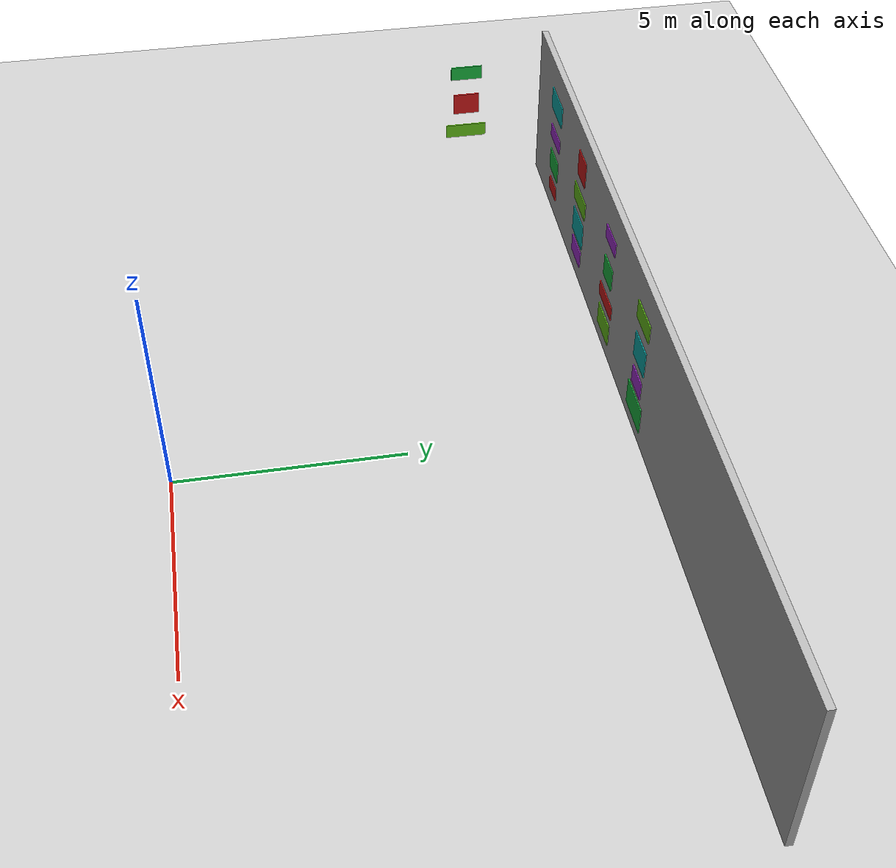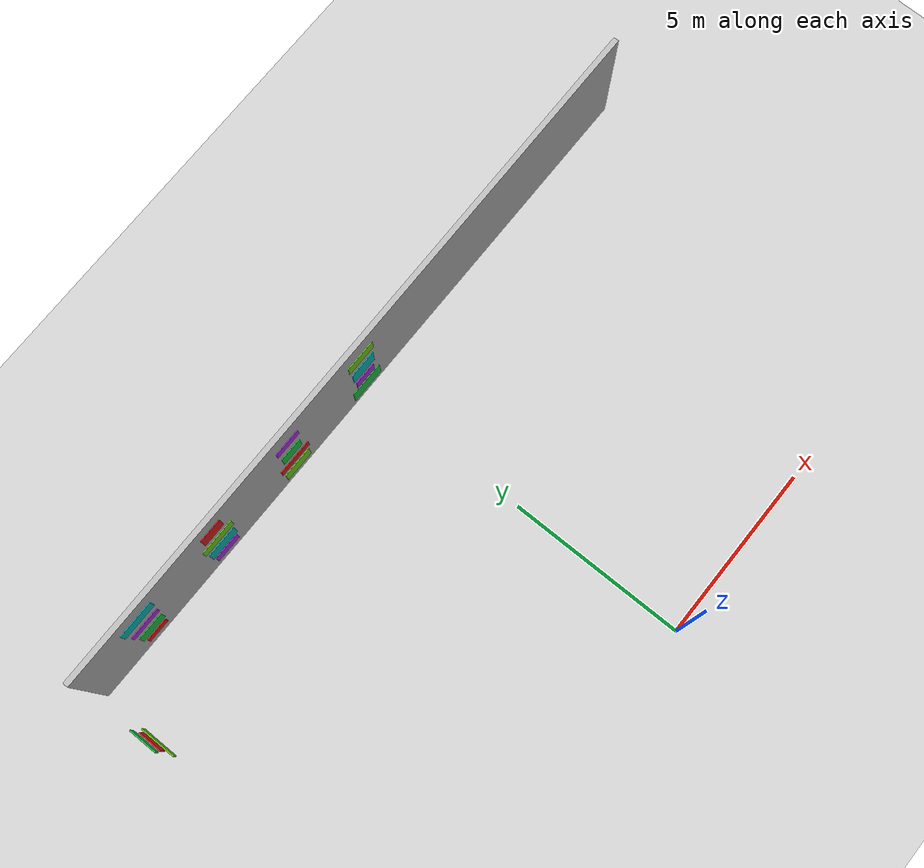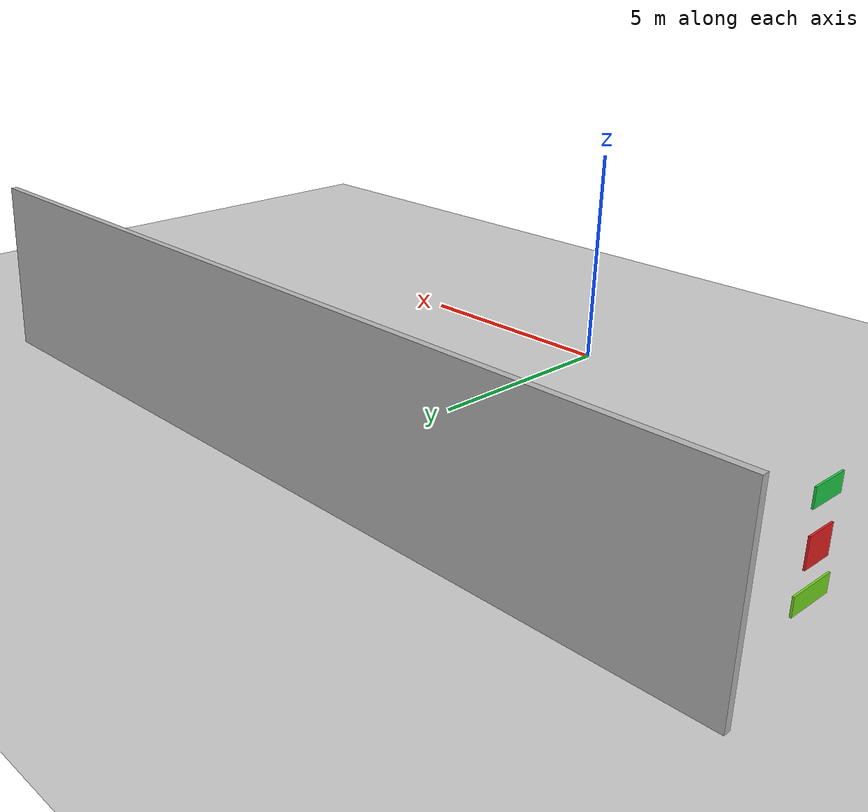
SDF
<sdf version="1.9">
 <world name="vio_marker_arena">
  <model name="ground_plane">
   <static>true</static>
   <link name="link">
    <collision name="collision">
     <geometry><plane><normal>0 0 1</normal><size>1 1</size></plane></geometry>
    </collision>
    <visual name="visual">
     <geometry><plane><normal>0 0 1</normal><size>500 500</size></plane></geometry>
     <material>
      <ambient>0.8 0.8 0.8 1</ambient>
      <diffuse>0.8 0.8 0.8 1</diffuse>
      <specular>0.8 0.8 0.8 1</specular>
     </material>
    </visual>
    <inertial>
     <mass>1</mass>
     <inertia><ixx>1</ixx><ixy>0</ixy><ixz>0</ixz><iyy>1</iyy><iyz>0</iyz><izz>1</izz></inertia>
    </inertial>
   </link>
  </model>
  <model name="vio_wall_north">
   <static>true</static>
   <pose>0.0000 10.0000 2.0000 0.0000 0.0000 0.0000</pose>
   <link name="link">
    <collision name="collision"><geometry><box><size>20.0000 0.1500 4.0000</size></box></geometry></collision>
    <visual name="visual">
     <geometry><box><size>20.0000 0.1500 4.0000</size></box></geometry>
     <material>
      <ambient>0.720 0.720 0.720 1.000</ambient>
      <diffuse>0.720 0.720 0.720 1.000</diffuse>
      <specular>0.10 0.10 0.10 1</specular>
      <emissive>0 0 0 1</emissive>
     </material>
    </visual>
   </link>
  </model>
  <model name="vio_panel_north_0_0">
   <static>true</static>
   <pose>-8.0000 9.9190 0.6500 0.0000 0.0000 0.0000</pose>
   <link name="link">
    <visual name="visual">
     <geometry><box><size>0.6500 0.0350 0.3500</size></box></geometry>
     <material>
      <ambient>0.900 0.120 0.120 1.000</ambient>
      <diffuse>0.900 0.120 0.120 1.000</diffuse>
      <specular>0.10 0.10 0.10 1</specular>
      <emissive>0 0 0 1</emissive>
     </material>
    </visual>
   </link>
  </model>
  <model name="vio_panel_north_0_1">
   <static>true</static>
   <pose>-5.4000 9.9190 0.6500 0.0000 0.0000 0.0000</pose>
   <link name="link">
    <visual name="visual">
     <geometry><box><size>0.7700 0.0350 0.4500</size></box></geometry>
     <material>
      <ambient>0.700 0.200 0.900 1.000</ambient>
      <diffuse>0.700 0.200 0.900 1.000</diffuse>
      <specular>0.10 0.10 0.10 1</specular>
      <emissive>0 0 0 1</emissive>
     </material>
    </visual>
   </link>
  </model>
  <model name="vio_panel_north_0_2">
   <static>true</static>
   <pose>-2.7000 9.9190 0.6500 0.0000 0.0000 0.0000</pose>
   <link name="link">
    <visual name="visual">
     <geometry><box><size>0.8900 0.0350 0.5500</size></box></geometry>
     <material>
      <ambient>0.450 0.850 0.120 1.000</ambient>
      <diffuse>0.450 0.850 0.120 1.000</diffuse>
      <specular>0.10 0.10 0.10 1</specular>
      <emissive>0 0 0 1</emissive>
     </material>
    </visual>
   </link>
  </model>
  <model name="vio_panel_north_0_3">
   <static>true</static>
   <pose>0.0000 9.9190 0.6500 0.0000 0.0000 0.0000</pose>
   <link name="link">
    <visual name="visual">
     <geometry><box><size>1.0100 0.0350 0.6500</size></box></geometry>
     <material>
      <ambient>0.120 0.800 0.280 1.000</ambient>
      <diffuse>0.120 0.800 0.280 1.000</diffuse>
      <specular>0.10 0.10 0.10 1</specular>
      <emissive>0 0 0 1</emissive>
     </material>
    </visual>
   </link>
  </model>
  <model name="vio_panel_north_1_0">
   <static>true</static>
   <pose>-8.0000 9.9190 1.3500 0.0000 0.0000 0.0000</pose>
   <link name="link">
    <visual name="visual">
     <geometry><box><size>0.7700 0.0350 0.5500</size></box></geometry>
     <material>
      <ambient>0.120 0.800 0.280 1.000</ambient>
      <diffuse>0.120 0.800 0.280 1.000</diffuse>
      <specular>0.10 0.10 0.10 1</specular>
      <emissive>0 0 0 1</emissive>
     </material>
    </visual>
   </link>
  </model>
  <model name="vio_panel_north_1_1">
   <static>true</static>
   <pose>-5.4000 9.9190 1.3500 0.0000 0.0000 0.0000</pose>
   <link name="link">
    <visual name="visual">
     <geometry><box><size>0.8900 0.0350 0.6500</size></box></geometry>
     <material>
      <ambient>0.050 0.750 0.750 1.000</ambient>
      <diffuse>0.050 0.750 0.750 1.000</diffuse>
      <specular>0.10 0.10 0.10 1</specular>
      <emissive>0 0 0 1</emissive>
     </material>
    </visual>
   </link>
  </model>
  <model name="vio_panel_north_1_2">
   <static>true</static>
   <pose>-2.7000 9.9190 1.3500 0.0000 0.0000 0.0000</pose>
   <link name="link">
    <visual name="visual">
     <geometry><box><size>1.0100 0.0350 0.3500</size></box></geometry>
     <material>
      <ambient>0.900 0.120 0.120 1.000</ambient>
      <diffuse>0.900 0.120 0.120 1.000</diffuse>
      <specular>0.10 0.10 0.10 1</specular>
      <emissive>0 0 0 1</emissive>
     </material>
    </visual>
   </link>
  </model>
  <model name="vio_panel_north_1_3">
   <static>true</static>
   <pose>0.0000 9.9190 1.3500 0.0000 0.0000 0.0000</pose>
   <link name="link">
    <visual name="visual">
     <geometry><box><size>0.6500 0.0350 0.4500</size></box></geometry>
     <material>
      <ambient>0.700 0.200 0.900 1.000</ambient>
      <diffuse>0.700 0.200 0.900 1.000</diffuse>
      <specular>0.10 0.10 0.10 1</specular>
      <emissive>0 0 0 1</emissive>
     </material>
    </visual>
   </link>
  </model>
  <model name="vio_panel_north_2_0">
   <static>true</static>
   <pose>-8.0000 9.9190 2.1500 0.0000 0.0000 0.0000</pose>
   <link name="link">
    <visual name="visual">
     <geometry><box><size>0.8900 0.0350 0.3500</size></box></geometry>
     <material>
      <ambient>0.700 0.200 0.900 1.000</ambient>
      <diffuse>0.700 0.200 0.900 1.000</diffuse>
      <specular>0.10 0.10 0.10 1</specular>
      <emissive>0 0 0 1</emissive>
     </material>
    </visual>
   </link>
  </model>
  <model name="vio_panel_north_2_1">
   <static>true</static>
   <pose>-5.4000 9.9190 2.1500 0.0000 0.0000 0.0000</pose>
   <link name="link">
    <visual name="visual">
     <geometry><box><size>1.0100 0.0350 0.4500</size></box></geometry>
     <material>
      <ambient>0.450 0.850 0.120 1.000</ambient>
      <diffuse>0.450 0.850 0.120 1.000</diffuse>
      <specular>0.10 0.10 0.10 1</specular>
      <emissive>0 0 0 1</emissive>
     </material>
    </visual>
   </link>
  </model>
  <model name="vio_panel_north_2_2">
   <static>true</static>
   <pose>-2.7000 9.9190 2.1500 0.0000 0.0000 0.0000</pose>
   <link name="link">
    <visual name="visual">
     <geometry><box><size>0.6500 0.0350 0.5500</size></box></geometry>
     <material>
      <ambient>0.120 0.800 0.280 1.000</ambient>
      <diffuse>0.120 0.800 0.280 1.000</diffuse>
      <specular>0.10 0.10 0.10 1</specular>
      <emissive>0 0 0 1</emissive>
     </material>
    </visual>
   </link>
  </model>
  <model name="vio_panel_north_2_3">
   <static>true</static>
   <pose>0.0000 9.9190 2.1500 0.0000 0.0000 0.0000</pose>
   <link name="link">
    <visual name="visual">
     <geometry><box><size>0.7700 0.0350 0.6500</size></box></geometry>
     <material>
      <ambient>0.050 0.750 0.750 1.000</ambient>
      <diffuse>0.050 0.750 0.750 1.000</diffuse>
      <specular>0.10 0.10 0.10 1</specular>
      <emissive>0 0 0 1</emissive>
     </material>
    </visual>
   </link>
  </model>
  <model name="vio_panel_north_3_0">
   <static>true</static>
   <pose>-8.0000 9.9190 3.0500 0.0000 0.0000 0.0000</pose>
   <link name="link">
    <visual name="visual">
     <geometry><box><size>1.0100 0.0350 0.5500</size></box></geometry>
     <material>
      <ambient>0.050 0.750 0.750 1.000</ambient>
      <diffuse>0.050 0.750 0.750 1.000</diffuse>
      <specular>0.10 0.10 0.10 1</specular>
      <emissive>0 0 0 1</emissive>
     </material>
    </visual>
   </link>
  </model>
  <model name="vio_panel_north_3_1">
   <static>true</static>
   <pose>-5.4000 9.9190 3.0500 0.0000 0.0000 0.0000</pose>
   <link name="link">
    <visual name="visual">
     <geometry><box><size>0.6500 0.0350 0.6500</size></box></geometry>
     <material>
      <ambient>0.900 0.120 0.120 1.000</ambient>
      <diffuse>0.900 0.120 0.120 1.000</diffuse>
      <specular>0.10 0.10 0.10 1</specular>
      <emissive>0 0 0 1</emissive>
     </material>
    </visual>
   </link>
  </model>
  <model name="vio_panel_north_3_2">
   <static>true</static>
   <pose>-2.7000 9.9190 3.0500 0.0000 0.0000 0.0000</pose>
   <link name="link">
    <visual name="visual">
     <geometry><box><size>0.7700 0.0350 0.3500</size></box></geometry>
     <material>
      <ambient>0.700 0.200 0.900 1.000</ambient>
      <diffuse>0.700 0.200 0.900 1.000</diffuse>
      <specular>0.10 0.10 0.10 1</specular>
      <emissive>0 0 0 1</emissive>
     </material>
    </visual>
   </link>
  </model>
  <model name="vio_panel_north_3_3">
   <static>true</static>
   <pose>0.0000 9.9190 3.0500 0.0000 0.0000 0.0000</pose>
   <link name="link">
    <visual name="visual">
     <geometry><box><size>0.8900 0.0350 0.4500</size></box></geometry>
     <material>
      <ambient>0.450 0.850 0.120 1.000</ambient>
      <diffuse>0.450 0.850 0.120 1.000</diffuse>
      <specular>0.10 0.10 0.10 1</specular>
      <emissive>0 0 0 1</emissive>
     </material>
    </visual>
   </link>
  </model>
  <model name="vio_panel_west_1_6">
   <static>true</static>
   <pose>-9.9190 8.0000 1.3500 0.0000 0.0000 0.0000</pose>
   <link name="link">
    <visual name="visual">
     <geometry><box><size>0.0350 1.0100 0.3500</size></box></geometry>
     <material>
      <ambient>0.450 0.850 0.120 1.000</ambient>
      <diffuse>0.450 0.850 0.120 1.000</diffuse>
      <specular>0.10 0.10 0.10 1</specular>
      <emissive>0 0 0 1</emissive>
     </material>
    </visual>
   </link>
  </model>
  <model name="vio_panel_west_2_6">
   <static>true</static>
   <pose>-9.9190 8.0000 2.1500 0.0000 0.0000 0.0000</pose>
   <link name="link">
    <visual name="visual">
     <geometry><box><size>0.0350 0.6500 0.5500</size></box></geometry>
     <material>
      <ambient>0.900 0.120 0.120 1.000</ambient>
      <diffuse>0.900 0.120 0.120 1.000</diffuse>
      <specular>0.10 0.10 0.10 1</specular>
      <emissive>0 0 0 1</emissive>
     </material>
    </visual>
   </link>
  </model>
  <model name="vio_panel_west_3_6">
   <static>true</static>
   <pose>-9.9190 8.0000 3.0500 0.0000 0.0000 0.0000</pose>
   <link name="link">
    <visual name="visual">
     <geometry><box><size>0.0350 0.7700 0.3500</size></box></geometry>
     <material>
      <ambient>0.120 0.800 0.280 1.000</ambient>
      <diffuse>0.120 0.800 0.280 1.000</diffuse>
      <specular>0.10 0.10 0.10 1</specular>
      <emissive>0 0 0 1</emissive>
     </material>
    </visual>
   </link>
  </model>
 </world>
</sdf>
